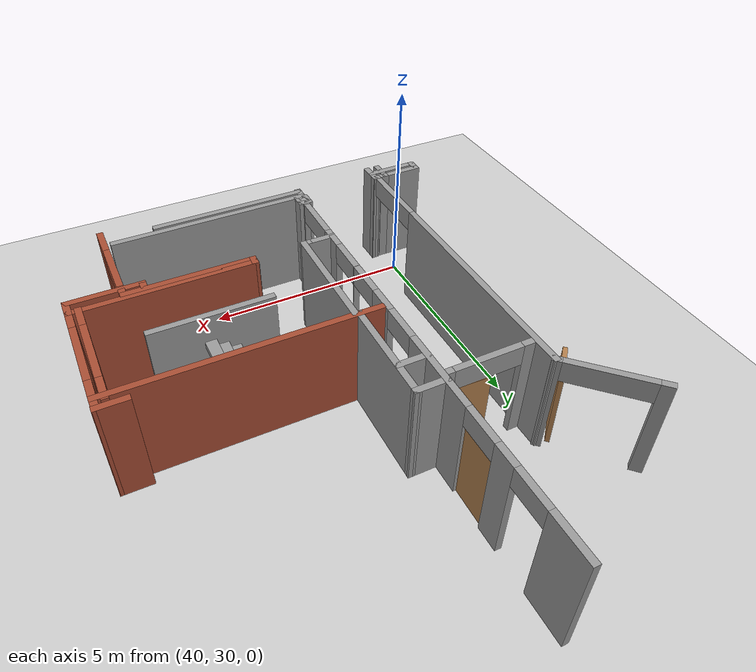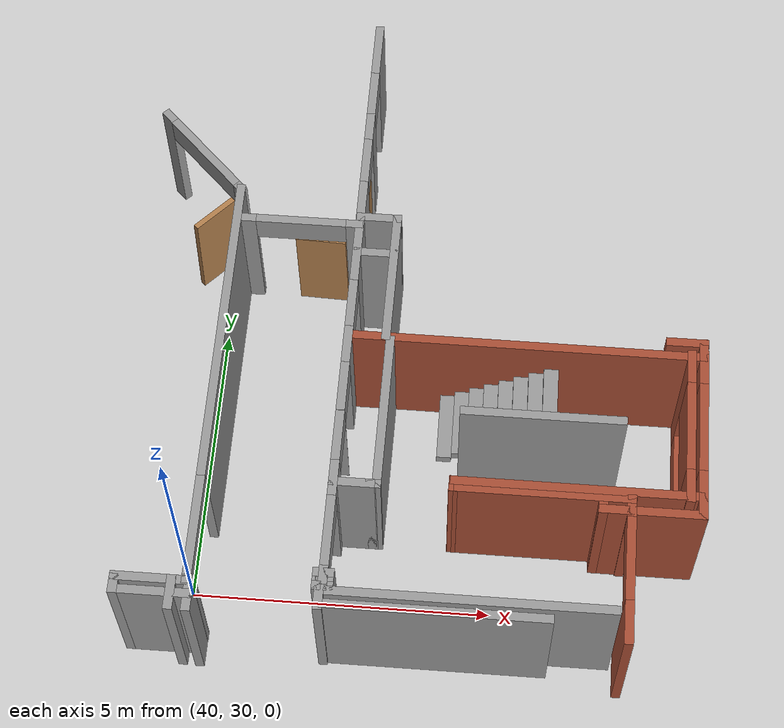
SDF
<sdf version="1.6">
 <world name="default">
  <model name="ground_plane">
   <static>1</static>
   <link name="link">
    <collision name="collision">
     <geometry><plane><normal>0 0 1</normal><size>100 100</size></plane></geometry>
     <surface><friction><ode><mu>100</mu><mu2>50</mu2></ode></friction></surface>
    </collision>
    <visual name="visual">
     <cast_shadows>0</cast_shadows>
     <geometry><plane><normal>0 0 1</normal><size>100 100</size></plane></geometry>
     <material>
      <script><uri>file://media/materials/scripts/gazebo.material</uri><name>Gazebo/Grey</name></script>
     </material>
    </visual>
   </link>
  </model>
  <model name="CVSSP">
   <pose>23.8714 24.094 0 0 -0 0</pose>
   <link name="Wall_1">
    <pose>15.5976 13.2926 0 0 0 -0.785398</pose>
    <visual name="Wall_1_Visual_0">
     <pose>-0.986494 0 1.25 0 -0 0</pose>
     <geometry><box><size>0.277012 0.15 2.5</size></box></geometry>
     <material>
      <script><uri>file://media/materials/scripts/gazebo.material</uri><name>Gazebo/Grey</name></script>
      <ambient>0.588235 0.588235 0.588235 1</ambient>
     </material>
    </visual>
    <collision name="Wall_1_Collision_0">
     <geometry><box><size>0.277012 0.15 2.5</size></box></geometry>
     <pose>-0.986494 0 1.25 0 -0 0</pose>
    </collision>
    <visual name="Wall_1_Visual_1">
     <pose>1.02335 0 1.25 0 -0 0</pose>
     <geometry><box><size>0.203299 0.15 2.5</size></box></geometry>
     <material>
      <script><uri>file://media/materials/scripts/gazebo.material</uri><name>Gazebo/Grey</name></script>
      <ambient>0.588235 0.588235 0.588235 1</ambient>
     </material>
    </visual>
    <collision name="Wall_1_Collision_1">
     <geometry><box><size>0.203299 0.15 2.5</size></box></geometry>
     <pose>1.02335 0 1.25 0 -0 0</pose>
    </collision>
    <visual name="Wall_1_Visual_2">
     <pose>0.036857 0 2.25 0 -0 0</pose>
     <geometry><box><size>1.76969 0.15 0.5</size></box></geometry>
     <material>
      <script><uri>file://media/materials/scripts/gazebo.material</uri><name>Gazebo/Grey</name></script>
      <ambient>0.588235 0.588235 0.588235 1</ambient>
     </material>
    </visual>
    <collision name="Wall_1_Collision_2">
     <geometry><box><size>1.76969 0.15 0.5</size></box></geometry>
     <pose>0.036857 0 2.25 0 -0 0</pose>
    </collision>
   </link>
   <link name="Wall_105">
    <collision name="Wall_105_Collision">
     <geometry><box><size>0.321526 0.15 2.5</size></box></geometry>
     <pose>0 0 1.25 0 -0 0</pose>
    </collision>
    <visual name="Wall_105_Visual">
     <pose>0 0 1.25 0 -0 0</pose>
     <geometry><box><size>0.321526 0.15 2.5</size></box></geometry>
     <material>
      <script><uri>file://media/materials/scripts/gazebo.material</uri><name>Gazebo/Grey</name></script>
      <ambient>1 1 1 1</ambient>
     </material>
    </visual>
    <pose>15.205 5.04453 0 0 0 -1.5708</pose>
   </link>
   <link name="Wall_106">
    <collision name="Wall_106_Collision">
     <geometry><box><size>1.33354 0.15 2.5</size></box></geometry>
     <pose>0 0 1.25 0 -0 0</pose>
    </collision>
    <visual name="Wall_106_Visual">
     <pose>0 0 1.25 0 -0 0</pose>
     <geometry><box><size>1.33354 0.15 2.5</size></box></geometry>
     <material>
      <script><uri>file://media/materials/scripts/gazebo.material</uri><name>Gazebo/Grey</name></script>
      <ambient>1 1 1 1</ambient>
     </material>
    </visual>
    <pose>15.7968 4.95877 0 0 -0 0</pose>
   </link>
   <link name="Wall_109">
    <collision name="Wall_109_Collision">
     <geometry><box><size>0.578815 0.15 2.5</size></box></geometry>
     <pose>0 0 1.25 0 -0 0</pose>
    </collision>
    <visual name="Wall_109_Visual">
     <pose>0 0 1.25 0 -0 0</pose>
     <geometry><box><size>0.578815 0.15 2.5</size></box></geometry>
     <material>
      <script><uri>file://media/materials/scripts/gazebo.material</uri><name>Gazebo/Grey</name></script>
      <ambient>1 1 1 1</ambient>
     </material>
    </visual>
    <pose>16.1084 4.96163 0 0 -0 1.5708</pose>
   </link>
   <link name="Wall_110">
    <collision name="Wall_110_Collision">
     <geometry><box><size>0.435877 0.15 2.5</size></box></geometry>
     <pose>0 0 1.25 0 -0 0</pose>
    </collision>
    <visual name="Wall_110_Visual">
     <pose>0 0 1.25 0 -0 0</pose>
     <geometry><box><size>0.435877 0.15 2.5</size></box></geometry>
     <material>
      <script><uri>file://media/materials/scripts/gazebo.material</uri><name>Gazebo/Grey</name></script>
      <ambient>1 1 1 1</ambient>
     </material>
    </visual>
    <pose>16.2513 5.17604 0 0 -0 0</pose>
   </link>
   <link name="Wall_112">
    <collision name="Wall_112_Collision">
     <geometry><box><size>1.05344 0.15 2.5</size></box></geometry>
     <pose>0 0 1.25 0 -0 0</pose>
    </collision>
    <visual name="Wall_112_Visual">
     <pose>0 0 1.25 0 -0 0</pose>
     <geometry><box><size>1.05344 0.15 2.5</size></box></geometry>
     <material>
      <script><uri>file://media/materials/scripts/gazebo.material</uri><name>Gazebo/Grey</name></script>
      <ambient>1 1 1 1</ambient>
     </material>
    </visual>
    <pose>15.6567 5.17604 0 0 -0 3.14159</pose>
   </link>
   <link name="Wall_137">
    <collision name="Wall_137_Collision">
     <geometry><box><size>0.344547 0.15 2.5</size></box></geometry>
     <pose>0 0 1.25 0 -0 0</pose>
    </collision>
    <visual name="Wall_137_Visual">
     <pose>0 0 1.25 0 -0 0</pose>
     <geometry><box><size>0.344547 0.15 2.5</size></box></geometry>
     <material>
      <script><uri>file://media/materials/scripts/gazebo.material</uri><name>Gazebo/Grey</name></script>
      <ambient>1 1 1 1</ambient>
     </material>
    </visual>
    <pose>18.4776 5.4664 0 0 -0 0</pose>
   </link>
   <link name="Wall_138">
    <collision name="Wall_138_Collision">
     <geometry><box><size>0.37481 0.15 2.5</size></box></geometry>
     <pose>0 0 1.25 0 -0 0</pose>
    </collision>
    <visual name="Wall_138_Visual">
     <pose>0 0 1.25 0 -0 0</pose>
     <geometry><box><size>0.37481 0.15 2.5</size></box></geometry>
     <material>
      <script><uri>file://media/materials/scripts/gazebo.material</uri><name>Gazebo/Grey</name></script>
      <ambient>1 1 1 1</ambient>
     </material>
    </visual>
    <pose>18.5749 5.354 0 0 0 -1.5708</pose>
   </link>
   <link name="Wall_139">
    <collision name="Wall_139_Collision">
     <geometry><box><size>0.344547 0.15 2.5</size></box></geometry>
     <pose>0 0 1.25 0 -0 0</pose>
    </collision>
    <visual name="Wall_139_Visual">
     <pose>0 0 1.25 0 -0 0</pose>
     <geometry><box><size>0.344547 0.15 2.5</size></box></geometry>
     <material>
      <script><uri>file://media/materials/scripts/gazebo.material</uri><name>Gazebo/Grey</name></script>
      <ambient>1 1 1 1</ambient>
     </material>
    </visual>
    <pose>18.4776 5.24159 0 0 -0 3.14159</pose>
   </link>
   <link name="Wall_140">
    <collision name="Wall_140_Collision">
     <geometry><box><size>0.370487 0.15 2.5</size></box></geometry>
     <pose>0 0 1.25 0 -0 0</pose>
    </collision>
    <visual name="Wall_140_Visual">
     <pose>0 0 1.25 0 -0 0</pose>
     <geometry><box><size>0.370487 0.15 2.5</size></box></geometry>
     <material>
      <script><uri>file://media/materials/scripts/gazebo.material</uri><name>Gazebo/Grey</name></script>
      <ambient>1 1 1 1</ambient>
     </material>
    </visual>
    <pose>18.3803 5.35184 0 0 -0 1.5708</pose>
   </link>
   <link name="Wall_142">
    <collision name="Wall_142_Collision">
     <geometry><box><size>4.79472 0.15 2.5</size></box></geometry>
     <pose>0 0 1.25 0 -0 0</pose>
    </collision>
    <visual name="Wall_142_Visual">
     <pose>0 0 1.25 0 -0 0</pose>
     <geometry><box><size>4.79472 0.15 2.5</size></box></geometry>
     <material>
      <script><uri>file://media/materials/scripts/gazebo.material</uri><name>Gazebo/Grey</name></script>
      <ambient>1 1 1 1</ambient>
     </material>
    </visual>
    <pose>20.7622 5.16977 0 0 0 -3.14127</pose>
   </link>
   <link name="Wall_145">
    <collision name="Wall_145_Collision">
     <geometry><box><size>3.74924 0.15 2.5</size></box></geometry>
     <pose>0 0 1.25 0 -0 0</pose>
    </collision>
    <visual name="Wall_145_Visual">
     <pose>0 0 1.25 0 -0 0</pose>
     <geometry><box><size>3.74924 0.15 2.5</size></box></geometry>
     <material>
      <script><uri>file://media/materials/scripts/gazebo.material</uri><name>Gazebo/Grey</name></script>
      <ambient>0.588235 0.588235 0.588235 1</ambient>
     </material>
    </visual>
    <pose>20.2524 4.95267 0 0 -0 0</pose>
   </link>
   <link name="Wall_200">
    <pose>23.2929 5.89364 0 0 -0 1.57095</pose>
    <visual name="Wall_200_Visual_0">
     <pose>-0.901323 0 1.25 0 -0 0</pose>
     <geometry><box><size>0.73684 0.15 2.5</size></box></geometry>
     <material>
      <script><uri>file://media/materials/scripts/gazebo.material</uri><name>Gazebo/Bricks</name></script>
      <ambient>0.588235 0.588235 0.588235 1</ambient>
     </material>
    </visual>
    <collision name="Wall_200_Collision_0">
     <geometry><box><size>0.73684 0.15 2.5</size></box></geometry>
     <pose>-0.901323 0 1.25 0 -0 0</pose>
    </collision>
    <visual name="Wall_200_Visual_1">
     <pose>1.08077 0 1.25 0 -0 0</pose>
     <geometry><box><size>0.377951 0.15 2.5</size></box></geometry>
     <material>
      <script><uri>file://media/materials/scripts/gazebo.material</uri><name>Gazebo/Bricks</name></script>
      <ambient>0.588235 0.588235 0.588235 1</ambient>
     </material>
    </visual>
    <collision name="Wall_200_Collision_1">
     <geometry><box><size>0.377951 0.15 2.5</size></box></geometry>
     <pose>1.08077 0 1.25 0 -0 0</pose>
    </collision>
    <visual name="Wall_200_Visual_2">
     <pose>0.179445 0 2.25 0 -0 0</pose>
     <geometry><box><size>1.4247 0.15 0.5</size></box></geometry>
     <material>
      <script><uri>file://media/materials/scripts/gazebo.material</uri><name>Gazebo/Bricks</name></script>
      <ambient>0.588235 0.588235 0.588235 1</ambient>
     </material>
    </visual>
    <collision name="Wall_200_Collision_2">
     <geometry><box><size>1.4247 0.15 0.5</size></box></geometry>
     <pose>0.179445 0 2.25 0 -0 0</pose>
    </collision>
   </link>
   <link name="Wall_201">
    <collision name="Wall_201_Collision">
     <geometry><box><size>3.01986 0.15 2.5</size></box></geometry>
     <pose>0 0 1.25 0 -0 0</pose>
    </collision>
    <visual name="Wall_201_Visual">
     <pose>0 0 1.25 0 -0 0</pose>
     <geometry><box><size>3.01986 0.15 2.5</size></box></geometry>
     <material>
      <script><uri>file://media/materials/scripts/gazebo.material</uri><name>Gazebo/Bricks</name></script>
      <ambient>1 1 1 1</ambient>
     </material>
    </visual>
    <pose>21.8512 7.08991 0 0 -0 3.14064</pose>
   </link>
   <link name="Wall_203">
    <collision name="Wall_203_Collision">
     <geometry><box><size>0.268535 0.15 2.5</size></box></geometry>
     <pose>0 0 1.25 0 -0 0</pose>
    </collision>
    <visual name="Wall_203_Visual">
     <pose>0 0 1.25 0 -0 0</pose>
     <geometry><box><size>0.268535 0.15 2.5</size></box></geometry>
     <material>
      <script><uri>file://media/materials/scripts/gazebo.material</uri><name>Gazebo/Bricks</name></script>
      <ambient>1 1 1 1</ambient>
     </material>
    </visual>
    <pose>20.4196 7.15046 0 0 -0 1.5153</pose>
   </link>
   <link name="Wall_204">
    <collision name="Wall_204_Collision">
     <geometry><box><size>4.16742 0.15 2.5</size></box></geometry>
     <pose>0 0 1.25 0 -0 0</pose>
    </collision>
    <visual name="Wall_204_Visual">
     <pose>0 0 1.25 0 -0 0</pose>
     <geometry><box><size>4.16742 0.15 2.5</size></box></geometry>
     <material>
      <script><uri>file://media/materials/scripts/gazebo.material</uri><name>Gazebo/Bricks</name></script>
      <ambient>1 1 1 1</ambient>
     </material>
    </visual>
    <pose>22.425 7.20963 0 0 -0 0</pose>
   </link>
   <link name="Wall_206">
    <collision name="Wall_206_Collision">
     <geometry><box><size>0.472183 0.15 2.5</size></box></geometry>
     <pose>0 0 1.25 0 -0 0</pose>
    </collision>
    <visual name="Wall_206_Visual">
     <pose>0 0 1.25 0 -0 0</pose>
     <geometry><box><size>0.472183 0.15 2.5</size></box></geometry>
     <material>
      <script><uri>file://media/materials/scripts/gazebo.material</uri><name>Gazebo/Bricks</name></script>
      <ambient>1 1 1 1</ambient>
     </material>
    </visual>
    <pose>24.4337 7.04854 0 0 0 -1.5708</pose>
   </link>
   <link name="Wall_207">
    <collision name="Wall_207_Collision">
     <geometry><box><size>1.75 0.15 2.5</size></box></geometry>
     <pose>0 0 1.25 0 -0 0</pose>
    </collision>
    <visual name="Wall_207_Visual">
     <pose>0 0 1.25 0 -0 0</pose>
     <geometry><box><size>1.75 0.15 2.5</size></box></geometry>
     <material>
      <script><uri>file://media/materials/scripts/gazebo.material</uri><name>Gazebo/Bricks</name></script>
      <ambient>1 1 1 1</ambient>
     </material>
    </visual>
    <pose>23.6337 6.88745 0 0 -0 3.14159</pose>
   </link>
   <link name="Wall_208">
    <collision name="Wall_208_Collision">
     <geometry><box><size>0.25 0.15 2.5</size></box></geometry>
     <pose>0 0 1.25 0 -0 0</pose>
    </collision>
    <visual name="Wall_208_Visual">
     <pose>0 0 1.25 0 -0 0</pose>
     <geometry><box><size>0.25 0.15 2.5</size></box></geometry>
     <material>
      <script><uri>file://media/materials/scripts/gazebo.material</uri><name>Gazebo/Bricks</name></script>
      <ambient>1 1 1 1</ambient>
     </material>
    </visual>
    <pose>22.8337 6.93745 0 0 -0 1.5708</pose>
   </link>
   <link name="Wall_213">
    <pose>24.4337 8.48333 0 0 -0 1.5708</pose>
    <visual name="Wall_213_Visual_0">
     <pose>-1.07539 0 1.25 0 -0 0</pose>
     <geometry><box><size>0.546615 0.15 2.5</size></box></geometry>
     <material>
      <script><uri>file://media/materials/scripts/gazebo.material</uri><name>Gazebo/Bricks</name></script>
      <ambient>1 1 1 1</ambient>
     </material>
    </visual>
    <collision name="Wall_213_Collision_0">
     <geometry><box><size>0.546615 0.15 2.5</size></box></geometry>
     <pose>-1.07539 0 1.25 0 -0 0</pose>
    </collision>
    <visual name="Wall_213_Visual_1">
     <pose>0.273308 0 0.25 0 -0 0</pose>
     <geometry><box><size>2.15078 0.15 0.5</size></box></geometry>
     <material>
      <script><uri>file://media/materials/scripts/gazebo.material</uri><name>Gazebo/Bricks</name></script>
      <ambient>1 1 1 1</ambient>
     </material>
    </visual>
    <collision name="Wall_213_Collision_1">
     <geometry><box><size>2.15078 0.15 0.5</size></box></geometry>
     <pose>0.273308 0 0.25 0 -0 0</pose>
    </collision>
    <visual name="Wall_213_Visual_2">
     <pose>1.06771 0 1.5 0 -0 0</pose>
     <geometry><box><size>0.561981 0.15 2</size></box></geometry>
     <material>
      <script><uri>file://media/materials/scripts/gazebo.material</uri><name>Gazebo/Bricks</name></script>
      <ambient>1 1 1 1</ambient>
     </material>
    </visual>
    <collision name="Wall_213_Collision_2">
     <geometry><box><size>0.561981 0.15 2</size></box></geometry>
     <pose>1.06771 0 1.5 0 -0 0</pose>
    </collision>
    <visual name="Wall_213_Visual_3">
     <pose>-0.007683 0 1.9 0 -0 0</pose>
     <geometry><box><size>1.5888 0.15 1.2</size></box></geometry>
     <material>
      <script><uri>file://media/materials/scripts/gazebo.material</uri><name>Gazebo/Bricks</name></script>
      <ambient>1 1 1 1</ambient>
     </material>
    </visual>
    <collision name="Wall_213_Collision_3">
     <geometry><box><size>1.5888 0.15 1.2</size></box></geometry>
     <pose>-0.007683 0 1.9 0 -0 0</pose>
    </collision>
   </link>
   <link name="Wall_214">
    <collision name="Wall_214_Collision">
     <geometry><box><size>5.97381 0.15 2.5</size></box></geometry>
     <pose>0 0 1.25 0 -0 0</pose>
    </collision>
    <visual name="Wall_214_Visual">
     <pose>0 0 1.25 0 -0 0</pose>
     <geometry><box><size>5.97381 0.15 2.5</size></box></geometry>
     <material>
      <script><uri>file://media/materials/scripts/gazebo.material</uri><name>Gazebo/Bricks</name></script>
      <ambient>0.588235 0.588235 0.588235 1</ambient>
     </material>
    </visual>
    <pose>21.5218 9.76806 0 0 -0 3.14006</pose>
   </link>
   <link name="Wall_220">
    <pose>24.2299 8.49507 0 0 0 -1.5708</pose>
    <visual name="Wall_220_Visual_0">
     <pose>-1.08519 0 1.25 0 -0 0</pose>
     <geometry><box><size>0.603103 0.15 2.5</size></box></geometry>
     <material>
      <script><uri>file://media/materials/scripts/gazebo.material</uri><name>Gazebo/Bricks</name></script>
      <ambient>1 1 1 1</ambient>
     </material>
    </visual>
    <collision name="Wall_220_Collision_0">
     <geometry><box><size>0.603103 0.15 2.5</size></box></geometry>
     <pose>-1.08519 0 1.25 0 -0 0</pose>
    </collision>
    <visual name="Wall_220_Visual_1">
     <pose>0.301552 0 0.25 0 -0 0</pose>
     <geometry><box><size>2.17039 0.15 0.5</size></box></geometry>
     <material>
      <script><uri>file://media/materials/scripts/gazebo.material</uri><name>Gazebo/Bricks</name></script>
      <ambient>1 1 1 1</ambient>
     </material>
    </visual>
    <collision name="Wall_220_Collision_1">
     <geometry><box><size>2.17039 0.15 0.5</size></box></geometry>
     <pose>0.301552 0 0.25 0 -0 0</pose>
    </collision>
    <visual name="Wall_220_Visual_2">
     <pose>1.09595 0 1.5 0 -0 0</pose>
     <geometry><box><size>0.581584 0.15 2</size></box></geometry>
     <material>
      <script><uri>file://media/materials/scripts/gazebo.material</uri><name>Gazebo/Bricks</name></script>
      <ambient>1 1 1 1</ambient>
     </material>
    </visual>
    <collision name="Wall_220_Collision_2">
     <geometry><box><size>0.581584 0.15 2</size></box></geometry>
     <pose>1.09595 0 1.5 0 -0 0</pose>
    </collision>
    <visual name="Wall_220_Visual_3">
     <pose>0.010759 0 1.9 0 -0 0</pose>
     <geometry><box><size>1.5888 0.15 1.2</size></box></geometry>
     <material>
      <script><uri>file://media/materials/scripts/gazebo.material</uri><name>Gazebo/Bricks</name></script>
      <ambient>1 1 1 1</ambient>
     </material>
    </visual>
    <collision name="Wall_220_Collision_3">
     <geometry><box><size>1.5888 0.15 1.2</size></box></geometry>
     <pose>0.010759 0 1.9 0 -0 0</pose>
    </collision>
   </link>
   <link name="Wall_222">
    <collision name="Wall_222_Collision">
     <geometry><box><size>0.75 0.15 2.5</size></box></geometry>
     <pose>0 0 1.25 0 -0 0</pose>
    </collision>
    <visual name="Wall_222_Visual">
     <pose>0 0 1.25 0 -0 0</pose>
     <geometry><box><size>0.75 0.15 2.5</size></box></geometry>
     <material>
      <script><uri>file://media/materials/scripts/gazebo.material</uri><name>Gazebo/Grey</name></script>
      <ambient>0.588235 0.588235 0.588235 1</ambient>
     </material>
    </visual>
    <pose>18.778 7.05344 0 0 -0 0</pose>
   </link>
   <link name="Wall_223">
    <collision name="Wall_223_Collision">
     <geometry><box><size>0.25 0.15 2.5</size></box></geometry>
     <pose>0 0 1.25 0 -0 0</pose>
    </collision>
    <visual name="Wall_223_Visual">
     <pose>0 0 1.25 0 -0 0</pose>
     <geometry><box><size>0.25 0.15 2.5</size></box></geometry>
     <material>
      <script><uri>file://media/materials/scripts/gazebo.material</uri><name>Gazebo/Grey</name></script>
      <ambient>1 1 1 1</ambient>
     </material>
    </visual>
    <pose>19.128 7.05344 0 0 -0 0</pose>
   </link>
   <link name="Wall_224">
    <collision name="Wall_224_Collision">
     <geometry><box><size>2.81007 0.15 2.5</size></box></geometry>
     <pose>0 0 1.25 0 -0 0</pose>
    </collision>
    <visual name="Wall_224_Visual">
     <pose>0 0 1.25 0 -0 0</pose>
     <geometry><box><size>2.81007 0.15 2.5</size></box></geometry>
     <material>
      <script><uri>file://media/materials/scripts/gazebo.material</uri><name>Gazebo/Grey</name></script>
      <ambient>0.588235 0.588235 0.588235 1</ambient>
     </material>
    </visual>
    <pose>19.1823 8.38344 0 0 -0 1.56755</pose>
   </link>
   <link name="Wall_228">
    <pose>17.4069 11.9566 0 0 -0 0</pose>
    <visual name="Wall_228_Visual_0">
     <pose>-0.929285 0 1.25 0 -0 0</pose>
     <geometry><box><size>0.391429 0.15 2.5</size></box></geometry>
     <material>
      <script><uri>file://media/materials/scripts/gazebo.material</uri><name>Gazebo/Grey</name></script>
      <ambient>0.588235 0.588235 0.588235 1</ambient>
     </material>
    </visual>
    <collision name="Wall_228_Collision_0">
     <geometry><box><size>0.391429 0.15 2.5</size></box></geometry>
     <pose>-0.929285 0 1.25 0 -0 0</pose>
    </collision>
    <visual name="Wall_228_Visual_1">
     <pose>0.97634 0 1.25 0 -0 0</pose>
     <geometry><box><size>0.297321 0.15 2.5</size></box></geometry>
     <material>
      <script><uri>file://media/materials/scripts/gazebo.material</uri><name>Gazebo/Grey</name></script>
      <ambient>0.588235 0.588235 0.588235 1</ambient>
     </material>
    </visual>
    <collision name="Wall_228_Collision_1">
     <geometry><box><size>0.297321 0.15 2.5</size></box></geometry>
     <pose>0.97634 0 1.25 0 -0 0</pose>
    </collision>
    <visual name="Wall_228_Visual_2">
     <pose>0.047054 0 2.25 0 -0 0</pose>
     <geometry><box><size>1.56125 0.15 0.5</size></box></geometry>
     <material>
      <script><uri>file://media/materials/scripts/gazebo.material</uri><name>Gazebo/Grey</name></script>
      <ambient>0.588235 0.588235 0.588235 1</ambient>
     </material>
    </visual>
    <collision name="Wall_228_Collision_2">
     <geometry><box><size>1.56125 0.15 0.5</size></box></geometry>
     <pose>0.047054 0 2.25 0 -0 0</pose>
    </collision>
   </link>
   <link name="Wall_233">
    <collision name="Wall_233_Collision">
     <geometry><box><size>0.784783 0.15 2.5</size></box></geometry>
     <pose>0 0 1.25 0 -0 0</pose>
    </collision>
    <visual name="Wall_233_Visual">
     <pose>0 0 1.25 0 -0 0</pose>
     <geometry><box><size>0.784783 0.15 2.5</size></box></geometry>
     <material>
      <script><uri>file://media/materials/scripts/gazebo.material</uri><name>Gazebo/Grey</name></script>
      <ambient>1 1 1 1</ambient>
     </material>
    </visual>
    <pose>18.7997 12.116 0 0 -0 3.14159</pose>
   </link>
   <link name="Wall_235">
    <collision name="Wall_235_Collision">
     <geometry><box><size>2.48045 0.15 2.5</size></box></geometry>
     <pose>0 0 1.25 0 -0 0</pose>
    </collision>
    <visual name="Wall_235_Visual">
     <pose>0 0 1.25 0 -0 0</pose>
     <geometry><box><size>2.48045 0.15 2.5</size></box></geometry>
     <material>
      <script><uri>file://media/materials/scripts/gazebo.material</uri><name>Gazebo/Grey</name></script>
      <ambient>1 1 1 1</ambient>
     </material>
    </visual>
    <pose>19.1127 10.9507 0 0 0 -1.57453</pose>
   </link>
   <link name="Wall_237">
    <collision name="Wall_237_Collision">
     <geometry><box><size>0.75 0.15 2.5</size></box></geometry>
     <pose>0 0 1.25 0 -0 0</pose>
    </collision>
    <visual name="Wall_237_Visual">
     <pose>0 0 1.25 0 -0 0</pose>
     <geometry><box><size>0.75 0.15 2.5</size></box></geometry>
     <material>
      <script><uri>file://media/materials/scripts/gazebo.material</uri><name>Gazebo/Grey</name></script>
      <ambient>1 1 1 1</ambient>
     </material>
    </visual>
    <pose>18.798 11.4046 0 0 -0 0</pose>
   </link>
   <link name="Wall_239">
    <collision name="Wall_239_Collision">
     <geometry><box><size>0.410984 0.15 2.5</size></box></geometry>
     <pose>0 0 1.25 0 -0 0</pose>
    </collision>
    <visual name="Wall_239_Visual">
     <pose>0 0 1.25 0 -0 0</pose>
     <geometry><box><size>0.410984 0.15 2.5</size></box></geometry>
     <material>
      <script><uri>file://media/materials/scripts/gazebo.material</uri><name>Gazebo/Bricks</name></script>
      <ambient>1 1 1 1</ambient>
     </material>
    </visual>
    <pose>24.4308 9.89408 0 0 -0 1.593</pose>
   </link>
   <link name="Wall_240">
    <collision name="Wall_240_Collision">
     <geometry><box><size>0.714004 0.15 2.5</size></box></geometry>
     <pose>0 0 1.25 0 -0 0</pose>
    </collision>
    <visual name="Wall_240_Visual">
     <pose>0 0 1.25 0 -0 0</pose>
     <geometry><box><size>0.714004 0.15 2.5</size></box></geometry>
     <material>
      <script><uri>file://media/materials/scripts/gazebo.material</uri><name>Gazebo/Bricks</name></script>
      <ambient>1 1 1 1</ambient>
     </material>
    </visual>
    <pose>24.156 10.0241 0 0 0 -3.1399</pose>
   </link>
   <link name="Wall_594">
    <collision name="Wall_594_Collision">
     <geometry><box><size>2.75 0.15 2.5</size></box></geometry>
     <pose>0 0 1.25 0 -0 0</pose>
    </collision>
    <visual name="Wall_594_Visual">
     <pose>0 0 1.25 0 -0 0</pose>
     <geometry><box><size>2.75 0.15 2.5</size></box></geometry>
     <material>
      <script><uri>file://media/materials/scripts/gazebo.material</uri><name>Gazebo/Grey</name></script>
      <ambient>0.588235 0.588235 0.588235 1</ambient>
     </material>
    </visual>
    <pose>21.8103 8.48184 0 0 -0 0</pose>
   </link>
   <link name="Wall_6">
    <pose>16.34 8.87509 0 0 0 -1.5708</pose>
    <visual name="Wall_6_Visual_0">
     <pose>-0.935121 0 1.25 0 -0 0</pose>
     <geometry><box><size>5.62976 0.15 2.5</size></box></geometry>
     <material>
      <script><uri>file://media/materials/scripts/gazebo.material</uri><name>Gazebo/Grey</name></script>
      <ambient>0.588235 0.588235 0.588235 1</ambient>
     </material>
    </visual>
    <collision name="Wall_6_Collision_0">
     <geometry><box><size>5.62976 0.15 2.5</size></box></geometry>
     <pose>-0.935121 0 1.25 0 -0 0</pose>
    </collision>
    <visual name="Wall_6_Visual_1">
     <pose>3.6759 0 1.25 0 -0 0</pose>
     <geometry><box><size>0.148208 0.15 2.5</size></box></geometry>
     <material>
      <script><uri>file://media/materials/scripts/gazebo.material</uri><name>Gazebo/Grey</name></script>
      <ambient>0.588235 0.588235 0.588235 1</ambient>
     </material>
    </visual>
    <collision name="Wall_6_Collision_1">
     <geometry><box><size>0.148208 0.15 2.5</size></box></geometry>
     <pose>3.6759 0 1.25 0 -0 0</pose>
    </collision>
    <visual name="Wall_6_Visual_2">
     <pose>2.74078 0 2.25 0 -0 0</pose>
     <geometry><box><size>1.72203 0.15 0.5</size></box></geometry>
     <material>
      <script><uri>file://media/materials/scripts/gazebo.material</uri><name>Gazebo/Grey</name></script>
      <ambient>0.588235 0.588235 0.588235 1</ambient>
     </material>
    </visual>
    <collision name="Wall_6_Collision_2">
     <geometry><box><size>1.72203 0.15 0.5</size></box></geometry>
     <pose>2.74078 0 2.25 0 -0 0</pose>
    </collision>
   </link>
   <link name="Wall_78">
    <pose>18.474 10.7662 0 0 0 -1.57021</pose>
    <visual name="Wall_78_Visual_0">
     <pose>-4.96653 0 1.25 0 -0 0</pose>
     <geometry><box><size>1.05938 0.15 2.5</size></box></geometry>
     <material>
      <script><uri>file://media/materials/scripts/gazebo.material</uri><name>Gazebo/Grey</name></script>
      <ambient>1 1 1 1</ambient>
     </material>
    </visual>
    <collision name="Wall_78_Collision_0">
     <geometry><box><size>1.05938 0.15 2.5</size></box></geometry>
     <pose>-4.96653 0 1.25 0 -0 0</pose>
    </collision>
    <visual name="Wall_78_Visual_1">
     <pose>-3.25946 0 1.25 0 -0 0</pose>
     <geometry><box><size>0.554758 0.15 2.5</size></box></geometry>
     <material>
      <script><uri>file://media/materials/scripts/gazebo.material</uri><name>Gazebo/Grey</name></script>
      <ambient>1 1 1 1</ambient>
     </material>
    </visual>
    <collision name="Wall_78_Collision_1">
     <geometry><box><size>0.554758 0.15 2.5</size></box></geometry>
     <pose>-3.25946 0 1.25 0 -0 0</pose>
    </collision>
    <visual name="Wall_78_Visual_2">
     <pose>-1.07517 0 1.25 0 -0 0</pose>
     <geometry><box><size>2.01383 0.15 2.5</size></box></geometry>
     <material>
      <script><uri>file://media/materials/scripts/gazebo.material</uri><name>Gazebo/Grey</name></script>
      <ambient>1 1 1 1</ambient>
     </material>
    </visual>
    <collision name="Wall_78_Collision_2">
     <geometry><box><size>2.01383 0.15 2.5</size></box></geometry>
     <pose>-1.07517 0 1.25 0 -0 0</pose>
    </collision>
    <visual name="Wall_78_Visual_3">
     <pose>1.17751 0 1.25 0 -0 0</pose>
     <geometry><box><size>0.691523 0.15 2.5</size></box></geometry>
     <material>
      <script><uri>file://media/materials/scripts/gazebo.material</uri><name>Gazebo/Grey</name></script>
      <ambient>1 1 1 1</ambient>
     </material>
    </visual>
    <collision name="Wall_78_Collision_3">
     <geometry><box><size>0.691523 0.15 2.5</size></box></geometry>
     <pose>1.17751 0 1.25 0 -0 0</pose>
    </collision>
    <visual name="Wall_78_Visual_4">
     <pose>2.42807 0 1.25 0 -0 0</pose>
     <geometry><box><size>0.009597 0.15 2.5</size></box></geometry>
     <material>
      <script><uri>file://media/materials/scripts/gazebo.material</uri><name>Gazebo/Grey</name></script>
      <ambient>1 1 1 1</ambient>
     </material>
    </visual>
    <collision name="Wall_78_Collision_4">
     <geometry><box><size>0.009597 0.15 2.5</size></box></geometry>
     <pose>2.42807 0 1.25 0 -0 0</pose>
    </collision>
    <visual name="Wall_78_Visual_5">
     <pose>3.64808 0 1.25 0 -0 0</pose>
     <geometry><box><size>0.630422 0.15 2.5</size></box></geometry>
     <material>
      <script><uri>file://media/materials/scripts/gazebo.material</uri><name>Gazebo/Grey</name></script>
      <ambient>1 1 1 1</ambient>
     </material>
    </visual>
    <collision name="Wall_78_Collision_5">
     <geometry><box><size>0.630422 0.15 2.5</size></box></geometry>
     <pose>3.64808 0 1.25 0 -0 0</pose>
    </collision>
    <visual name="Wall_78_Visual_6">
     <pose>5.33714 0 1.25 0 -0 0</pose>
     <geometry><box><size>0.318161 0.15 2.5</size></box></geometry>
     <material>
      <script><uri>file://media/materials/scripts/gazebo.material</uri><name>Gazebo/Grey</name></script>
      <ambient>1 1 1 1</ambient>
     </material>
    </visual>
    <collision name="Wall_78_Collision_6">
     <geometry><box><size>0.318161 0.15 2.5</size></box></geometry>
     <pose>5.33714 0 1.25 0 -0 0</pose>
    </collision>
    <visual name="Wall_78_Visual_7">
     <pose>-3.98684 0 2.25 0 -0 0</pose>
     <geometry><box><size>0.9 0.15 0.5</size></box></geometry>
     <material>
      <script><uri>file://media/materials/scripts/gazebo.material</uri><name>Gazebo/Grey</name></script>
      <ambient>1 1 1 1</ambient>
     </material>
    </visual>
    <collision name="Wall_78_Collision_7">
     <geometry><box><size>0.9 0.15 0.5</size></box></geometry>
     <pose>-3.98684 0 2.25 0 -0 0</pose>
    </collision>
    <visual name="Wall_78_Visual_8">
     <pose>-2.53208 0 2.25 0 -0 0</pose>
     <geometry><box><size>0.9 0.15 0.5</size></box></geometry>
     <material>
      <script><uri>file://media/materials/scripts/gazebo.material</uri><name>Gazebo/Grey</name></script>
      <ambient>1 1 1 1</ambient>
     </material>
    </visual>
    <collision name="Wall_78_Collision_8">
     <geometry><box><size>0.9 0.15 0.5</size></box></geometry>
     <pose>-2.53208 0 2.25 0 -0 0</pose>
    </collision>
    <visual name="Wall_78_Visual_9">
     <pose>0.381748 0 2.25 0 -0 0</pose>
     <geometry><box><size>0.9 0.15 0.5</size></box></geometry>
     <material>
      <script><uri>file://media/materials/scripts/gazebo.material</uri><name>Gazebo/Grey</name></script>
      <ambient>1 1 1 1</ambient>
     </material>
    </visual>
    <collision name="Wall_78_Collision_9">
     <geometry><box><size>0.9 0.15 0.5</size></box></geometry>
     <pose>0.381748 0 2.25 0 -0 0</pose>
    </collision>
    <visual name="Wall_78_Visual_10">
     <pose>1.97327 0 2.25 0 -0 0</pose>
     <geometry><box><size>0.9 0.15 0.5</size></box></geometry>
     <material>
      <script><uri>file://media/materials/scripts/gazebo.material</uri><name>Gazebo/Grey</name></script>
      <ambient>1 1 1 1</ambient>
     </material>
    </visual>
    <collision name="Wall_78_Collision_10">
     <geometry><box><size>0.9 0.15 0.5</size></box></geometry>
     <pose>1.97327 0 2.25 0 -0 0</pose>
    </collision>
    <visual name="Wall_78_Visual_11">
     <pose>2.88287 0 2.25 0 -0 0</pose>
     <geometry><box><size>0.9 0.15 0.5</size></box></geometry>
     <material>
      <script><uri>file://media/materials/scripts/gazebo.material</uri><name>Gazebo/Grey</name></script>
      <ambient>1 1 1 1</ambient>
     </material>
    </visual>
    <collision name="Wall_78_Collision_11">
     <geometry><box><size>0.9 0.15 0.5</size></box></geometry>
     <pose>2.88287 0 2.25 0 -0 0</pose>
    </collision>
    <visual name="Wall_78_Visual_12">
     <pose>4.57067 0 2.25 0 -0 0</pose>
     <geometry><box><size>1.21477 0.15 0.5</size></box></geometry>
     <material>
      <script><uri>file://media/materials/scripts/gazebo.material</uri><name>Gazebo/Grey</name></script>
      <ambient>1 1 1 1</ambient>
     </material>
    </visual>
    <collision name="Wall_78_Collision_12">
     <geometry><box><size>1.21477 0.15 0.5</size></box></geometry>
     <pose>4.57067 0 2.25 0 -0 0</pose>
    </collision>
   </link>
   <link name="Wall_79">
    <collision name="Wall_79_Collision">
     <geometry><box><size>0.15 0.15 2.5</size></box></geometry>
     <pose>0 0 1.25 0 -0 0</pose>
    </collision>
    <visual name="Wall_79_Visual">
     <pose>0 0 1.25 0 -0 0</pose>
     <geometry><box><size>0.15 0.15 2.5</size></box></geometry>
     <material>
      <script><uri>file://media/materials/scripts/gazebo.material</uri><name>Gazebo/Grey</name></script>
      <ambient>1 1 1 1</ambient>
     </material>
    </visual>
    <pose>18.4772 5.34496 0 0 -0 0</pose>
   </link>
   <link name="Wall_8">
    <collision name="Wall_8_Collision">
     <geometry><box><size>0.200072 0.15 2.5</size></box></geometry>
     <pose>0 0 1.25 0 -0 0</pose>
    </collision>
    <visual name="Wall_8_Visual">
     <pose>0 0 1.25 0 -0 0</pose>
     <geometry><box><size>0.200072 0.15 2.5</size></box></geometry>
     <material>
      <script><uri>file://media/materials/scripts/gazebo.material</uri><name>Gazebo/Grey</name></script>
      <ambient>1 1 1 1</ambient>
     </material>
    </visual>
    <pose>16.3651 5.20082 0 0 -0 0.028929</pose>
   </link>
   <link name="Wall_80">
    <collision name="Wall_80_Collision">
     <geometry><box><size>0.15 0.15 2.5</size></box></geometry>
     <pose>0 0 1.25 0 -0 0</pose>
    </collision>
    <visual name="Wall_80_Visual">
     <pose>0 0 1.25 0 -0 0</pose>
     <geometry><box><size>0.15 0.15 2.5</size></box></geometry>
     <material>
      <script><uri>file://media/materials/scripts/gazebo.material</uri><name>Gazebo/Grey</name></script>
      <ambient>1 1 1 1</ambient>
     </material>
    </visual>
    <pose>18.4772 5.34496 0 0 -0 0</pose>
   </link>
   <link name="Wall_83">
    <collision name="Wall_83_Collision">
     <geometry><box><size>0.633672 0.15 2.5</size></box></geometry>
     <pose>0 0 1.25 0 -0 0</pose>
    </collision>
    <visual name="Wall_83_Visual">
     <pose>0 0 1.25 0 -0 0</pose>
     <geometry><box><size>0.633672 0.15 2.5</size></box></geometry>
     <material>
      <script><uri>file://media/materials/scripts/gazebo.material</uri><name>Gazebo/Grey</name></script>
      <ambient>1 1 1 1</ambient>
     </material>
    </visual>
    <pose>18.4338 5.15785 0 0 -0 1.56641</pose>
   </link>
   <link name="Wall_9">
    <collision name="Wall_9_Collision">
     <geometry><box><size>0.610308 0.15 2.5</size></box></geometry>
     <pose>0 0 1.25 0 -0 0</pose>
    </collision>
    <visual name="Wall_9_Visual">
     <pose>0 0 1.25 0 -0 0</pose>
     <geometry><box><size>0.610308 0.15 2.5</size></box></geometry>
     <material>
      <script><uri>file://media/materials/scripts/gazebo.material</uri><name>Gazebo/Grey</name></script>
      <ambient>1 1 1 1</ambient>
     </material>
    </visual>
    <pose>16.3901 4.97141 0 0 0 -1.5708</pose>
   </link>
   <static>1</static>
  </model>
  <model name="basic_ply_door_corrected">
   <link name="link">
    <pose>-0 0 1.00385 0 -0 0</pose>
    <inertial>
     <mass>0.5167</mass>
     <inertia>
      <ixx>0.00086117</ixx>
      <ixy>0</ixy>
      <ixz>0</ixz>
      <iyy>0.00086117</iyy>
      <iyz>0</iyz>
      <izz>0.00086117</izz>
     </inertia>
    </inertial>
    <gravity>0</gravity>
    <visual name="visual">
     <geometry><box><size>0.88 0.1 1.96</size></box></geometry>
     <material>
      <script><uri>file://media/materials/scripts/gazebo.material</uri><name>Gazebo/Wood</name></script>
      <shader type="pixel"><normal_map>__default__</normal_map></shader>
      <ambient>1 1 1 1</ambient>
      <diffuse>1 1 1 1</diffuse>
      <specular>0.2 0.2 0.2 1</specular>
      <emissive>0 0 0 1</emissive>
     </material>
    </visual>
    <collision name="collision">
     <geometry><box><size>0.88 0.1 1.96</size></box></geometry>
     <surface>
      <friction>
       <ode><mu>1</mu><mu2>1</mu2><fdir1>0 0 0</fdir1><slip1>0</slip1><slip2>0</slip2></ode>
       <torsional>
        <coefficient>1</coefficient>
        <patch_radius>0</patch_radius>
        <surface_radius>0.01</surface_radius>
        <use_patch_radius>0</use_patch_radius>
        <ode><slip>0</slip></ode>
       </torsional>
      </friction>
      <bounce><restitution_coefficient>0</restitution_coefficient><threshold>1e+06</threshold></bounce>
      <contact>
       <collide_without_contact>0</collide_without_contact>
       <collide_without_contact_bitmask>1</collide_without_contact_bitmask>
       <collide_bitmask>1</collide_bitmask>
       <ode>
        <soft_cfm>0</soft_cfm>
        <soft_erp>0.2</soft_erp>
        <kp>100000</kp>
        <kd>100</kd>
        <max_vel>100</max_vel>
        <min_depth>0.001</min_depth>
       </ode>
       <bullet>
        <split_impulse>1</split_impulse>
        <split_impulse_penetration_threshold>-0.01</split_impulse_penetration_threshold>
        <soft_cfm>0</soft_cfm>
        <soft_erp>0.2</soft_erp>
        <kp>100000</kp>
        <kd>100</kd>
       </bullet>
      </contact>
     </surface>
    </collision>
   </link>
   <static>1</static>
   <pose>39.6788 36.4233 -0.001013 0.019102 0.01742 0.832478</pose>
  </model>
  <model name="basic_ply_door_corrected_clone_0_clone">
   <link name="link">
    <pose>-0 0 1.00385 0 -0 0</pose>
    <inertial>
     <mass>0.5167</mass>
     <inertia>
      <ixx>0.00086117</ixx>
      <ixy>0</ixy>
      <ixz>0</ixz>
      <iyy>0.00086117</iyy>
      <iyz>0</iyz>
      <izz>0.00086117</izz>
     </inertia>
    </inertial>
    <gravity>0</gravity>
    <visual name="visual">
     <geometry><box><size>0.88 0.1 1.96</size></box></geometry>
     <material>
      <script><uri>file://media/materials/scripts/gazebo.material</uri><name>Gazebo/Wood</name></script>
      <shader type="pixel"><normal_map>__default__</normal_map></shader>
      <ambient>1 1 1 1</ambient>
      <diffuse>1 1 1 1</diffuse>
      <specular>0.2 0.2 0.2 1</specular>
      <emissive>0 0 0 1</emissive>
     </material>
    </visual>
    <collision name="collision">
     <geometry><box><size>0.88 0.1 1.96</size></box></geometry>
     <surface>
      <friction>
       <ode><mu>1</mu><mu2>1</mu2><fdir1>0 0 0</fdir1><slip1>0</slip1><slip2>0</slip2></ode>
       <torsional>
        <coefficient>1</coefficient>
        <patch_radius>0</patch_radius>
        <surface_radius>0.01</surface_radius>
        <use_patch_radius>0</use_patch_radius>
        <ode><slip>0</slip></ode>
       </torsional>
      </friction>
      <bounce><restitution_coefficient>0</restitution_coefficient><threshold>1e+06</threshold></bounce>
      <contact>
       <collide_without_contact>0</collide_without_contact>
       <collide_without_contact_bitmask>1</collide_without_contact_bitmask>
       <collide_bitmask>1</collide_bitmask>
       <ode>
        <soft_cfm>0</soft_cfm>
        <soft_erp>0.2</soft_erp>
        <kp>100000</kp>
        <kd>100</kd>
        <max_vel>100</max_vel>
        <min_depth>0.001</min_depth>
       </ode>
       <bullet>
        <split_impulse>1</split_impulse>
        <split_impulse_penetration_threshold>-0.01</split_impulse_penetration_threshold>
        <soft_cfm>0</soft_cfm>
        <soft_erp>0.2</soft_erp>
        <kp>100000</kp>
        <kd>100</kd>
       </bullet>
      </contact>
     </surface>
    </collision>
   </link>
   <static>1</static>
   <pose>42.3144 37.3998 -0.00101 0 -0 1.56379</pose>
  </model>
  <model name="basic_ply_door_corrected_clone_clone_clone_1">
   <link name="link">
    <pose>-0 0 1.00385 0 -0 0</pose>
    <inertial>
     <mass>0.5167</mass>
     <inertia>
      <ixx>0.00086117</ixx>
      <ixy>0</ixy>
      <ixz>0</ixz>
      <iyy>0.00086117</iyy>
      <iyz>0</iyz>
      <izz>0.00086117</izz>
     </inertia>
    </inertial>
    <gravity>0</gravity>
    <visual name="visual">
     <geometry><box><size>0.88 0.1 1.96</size></box></geometry>
     <material>
      <script><uri>file://media/materials/scripts/gazebo.material</uri><name>Gazebo/Wood</name></script>
      <shader type="pixel"><normal_map>__default__</normal_map></shader>
      <ambient>1 1 1 1</ambient>
      <diffuse>1 1 1 1</diffuse>
      <specular>0.2 0.2 0.2 1</specular>
      <emissive>0 0 0 1</emissive>
     </material>
    </visual>
    <collision name="collision">
     <geometry><box><size>0.88 0.1 1.96</size></box></geometry>
     <surface>
      <friction>
       <ode><mu>1</mu><mu2>1</mu2><fdir1>0 0 0</fdir1><slip1>0</slip1><slip2>0</slip2></ode>
       <torsional>
        <coefficient>1</coefficient>
        <patch_radius>0</patch_radius>
        <surface_radius>0.01</surface_radius>
        <use_patch_radius>0</use_patch_radius>
        <ode><slip>0</slip></ode>
       </torsional>
      </friction>
      <bounce><restitution_coefficient>0</restitution_coefficient><threshold>1e+06</threshold></bounce>
      <contact>
       <collide_without_contact>0</collide_without_contact>
       <collide_without_contact_bitmask>1</collide_without_contact_bitmask>
       <collide_bitmask>1</collide_bitmask>
       <ode>
        <soft_cfm>0</soft_cfm>
        <soft_erp>0.2</soft_erp>
        <kp>100000</kp>
        <kd>100</kd>
        <max_vel>100</max_vel>
        <min_depth>0.001</min_depth>
       </ode>
       <bullet>
        <split_impulse>1</split_impulse>
        <split_impulse_penetration_threshold>-0.01</split_impulse_penetration_threshold>
        <soft_cfm>0</soft_cfm>
        <soft_erp>0.2</soft_erp>
        <kp>100000</kp>
        <kd>100</kd>
       </bullet>
      </contact>
     </surface>
    </collision>
   </link>
   <static>1</static>
   <pose>41.6497 36.0398 -0.036806 0 0 -0.036583</pose>
  </model>
  <model name="stairs45">
   <pose>44.926 33.1801 0.514974 0 -0 1.58015</pose>
   <link name="Stairs_4">
    <visual name="Stairs_4_Visual_0">
     <pose>-0 0.875 0.084063 0 -0 0</pose>
     <geometry><box><size>1.2 0.25 0.168125</size></box></geometry>
     <material>
      <script><uri>file://media/materials/scripts/gazebo.material</uri><name>Gazebo/Grey</name></script>
      <ambient>1 1 1 1</ambient>
     </material>
     <meta><layer>0</layer></meta>
    </visual>
    <collision name="Stairs_4_Collision_0">
     <geometry><box><size>1.2 0.25 0.168125</size></box></geometry>
     <pose>-0 0.875 0.084063 0 -0 0</pose>
    </collision>
    <visual name="Stairs_4_Visual_1">
     <pose>-0 0.625 0.252187 0 -0 0</pose>
     <geometry><box><size>1.2 0.25 0.168125</size></box></geometry>
     <material>
      <script><uri>file://media/materials/scripts/gazebo.material</uri><name>Gazebo/Grey</name></script>
      <ambient>1 1 1 1</ambient>
     </material>
     <meta><layer>0</layer></meta>
    </visual>
    <collision name="Stairs_4_Collision_1">
     <geometry><box><size>1.2 0.25 0.168125</size></box></geometry>
     <pose>-0 0.625 0.252187 0 -0 0</pose>
    </collision>
    <visual name="Stairs_4_Visual_2">
     <pose>-0 0.375 0.420313 0 -0 0</pose>
     <geometry><box><size>1.2 0.25 0.168125</size></box></geometry>
     <material>
      <script><uri>file://media/materials/scripts/gazebo.material</uri><name>Gazebo/Grey</name></script>
      <ambient>1 1 1 1</ambient>
     </material>
     <meta><layer>0</layer></meta>
    </visual>
    <collision name="Stairs_4_Collision_2">
     <geometry><box><size>1.2 0.25 0.168125</size></box></geometry>
     <pose>-0 0.375 0.420313 0 -0 0</pose>
    </collision>
    <visual name="Stairs_4_Visual_3">
     <pose>-0 0.125 0.588437 0 -0 0</pose>
     <geometry><box><size>1.2 0.25 0.168125</size></box></geometry>
     <material>
      <script><uri>file://media/materials/scripts/gazebo.material</uri><name>Gazebo/Grey</name></script>
      <ambient>1 1 1 1</ambient>
     </material>
     <meta><layer>0</layer></meta>
    </visual>
    <collision name="Stairs_4_Collision_3">
     <geometry><box><size>1.2 0.25 0.168125</size></box></geometry>
     <pose>-0 0.125 0.588437 0 -0 0</pose>
    </collision>
    <visual name="Stairs_4_Visual_4">
     <pose>-0 -0.125 0.756563 0 -0 0</pose>
     <geometry><box><size>1.2 0.25 0.168125</size></box></geometry>
     <material>
      <script><uri>file://media/materials/scripts/gazebo.material</uri><name>Gazebo/Grey</name></script>
      <ambient>1 1 1 1</ambient>
     </material>
     <meta><layer>0</layer></meta>
    </visual>
    <collision name="Stairs_4_Collision_4">
     <geometry><box><size>1.2 0.25 0.168125</size></box></geometry>
     <pose>-0 -0.125 0.756563 0 -0 0</pose>
    </collision>
    <visual name="Stairs_4_Visual_5">
     <pose>-0 -0.375 0.924688 0 -0 0</pose>
     <geometry><box><size>1.2 0.25 0.168125</size></box></geometry>
     <material>
      <script><uri>file://media/materials/scripts/gazebo.material</uri><name>Gazebo/Grey</name></script>
      <ambient>1 1 1 1</ambient>
     </material>
     <meta><layer>0</layer></meta>
    </visual>
    <collision name="Stairs_4_Collision_5">
     <geometry><box><size>1.2 0.25 0.168125</size></box></geometry>
     <pose>-0 -0.375 0.924688 0 -0 0</pose>
    </collision>
    <visual name="Stairs_4_Visual_6">
     <pose>-0 -0.625 1.09281 0 -0 0</pose>
     <geometry><box><size>1.2 0.25 0.168125</size></box></geometry>
     <material>
      <script><uri>file://media/materials/scripts/gazebo.material</uri><name>Gazebo/Grey</name></script>
      <ambient>1 1 1 1</ambient>
     </material>
     <meta><layer>0</layer></meta>
    </visual>
    <collision name="Stairs_4_Collision_6">
     <geometry><box><size>1.2 0.25 0.168125</size></box></geometry>
     <pose>-0 -0.625 1.09281 0 -0 0</pose>
    </collision>
    <visual name="Stairs_4_Visual_7">
     <pose>-0 -0.875 1.26094 0 -0 0</pose>
     <geometry><box><size>1.2 0.25 0.168125</size></box></geometry>
     <material>
      <script><uri>file://media/materials/scripts/gazebo.material</uri><name>Gazebo/Grey</name></script>
      <ambient>1 1 1 1</ambient>
     </material>
     <meta><layer>0</layer></meta>
    </visual>
    <collision name="Stairs_4_Collision_7">
     <geometry><box><size>1.2 0.25 0.168125</size></box></geometry>
     <pose>-0 -0.875 1.26094 0 -0 0</pose>
    </collision>
   </link>
   <static>1</static>
  </model>
 </world>
</sdf>
